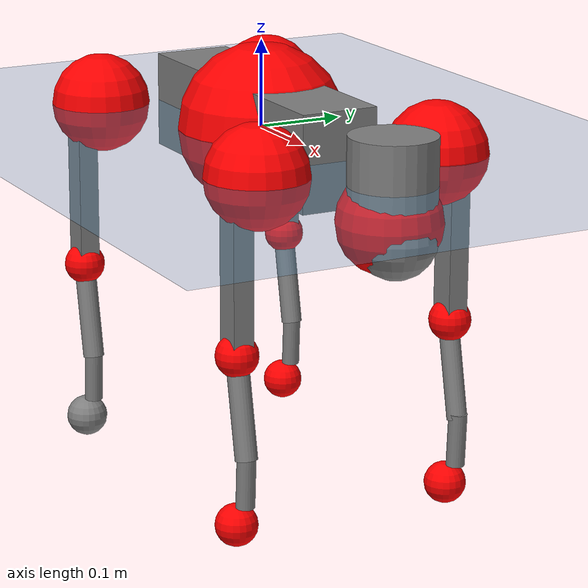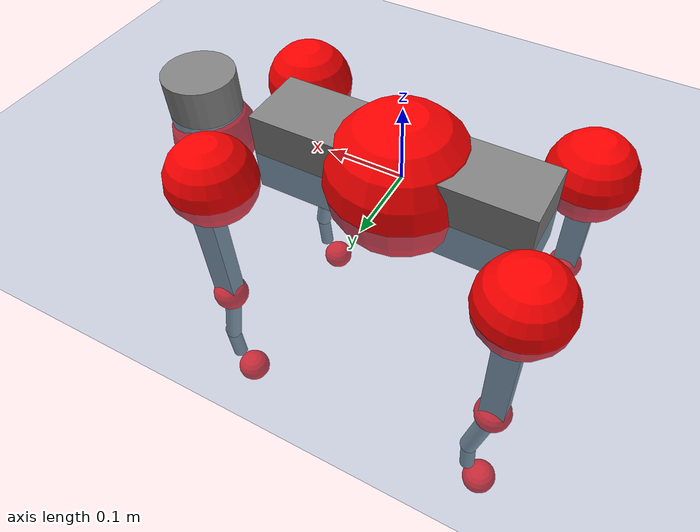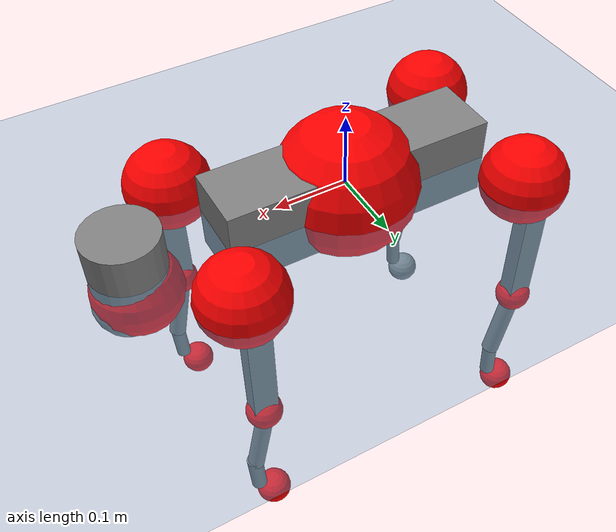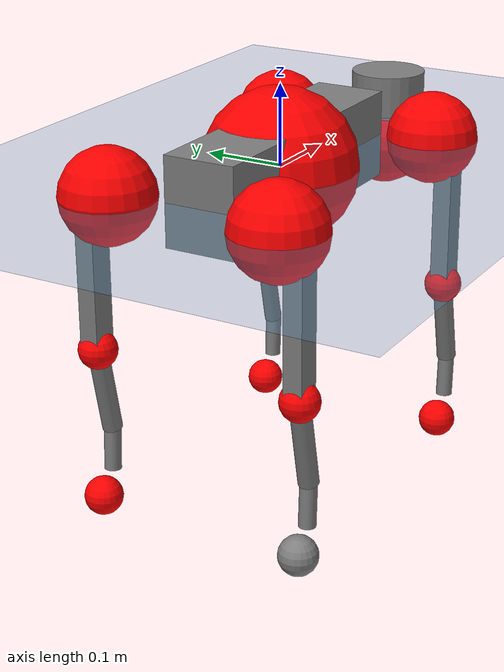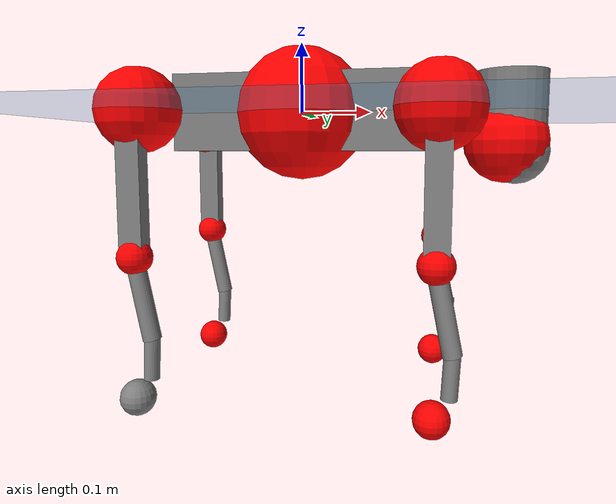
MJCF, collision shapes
<mujoco model="go2">
  <compiler angle="radian" assetdir="assets" balanceinertia="true" inertiafromgeom="false"/>

  <option timestep="0.005" density="1.2" viscosity="2e-05"/>

  <size nkey="1"/>

  <visual>
    <quality shadowsize="8192"/>
    <map shadowclip="0.5"/>
  </visual>

  <default>
    <default class="/">
      <geom contype="0" conaffinity="0" group="1" solref="-1000 -80"/>
      <site size="0.01 0.005 0.005" group="5"/>
      <general forcelimited="true" biastype="affine" gainprm="20" biasprm="0 -20 -0.5"/>
      <default class="go2">
        <joint armature="0.01" damping="0.01" frictionloss="0.2"/>
        <geom condim="1" margin="0.001"/>
        <default class="visual">
          <geom type="mesh" group="2"/>
        </default>
        <default class="collision">
          <geom group="3"/>
          <default class="foot">
            <geom size="0.022 0 0" condim="6" priority="1" friction="0.8 0.02 0.01" solimp="0.015 1 0.022"/>
          </default>
        </default>
        <default class="reward_collision_sphere">
          <geom group="5" rgba="1 0 0 1"/>
        </default>
      </default>
    </default>
  </default>

  <asset>
    <texture type="skybox" colorspace="auto" name="//unnamed_texture_0" builtin="gradient" rgb1="0.95 0.95 0.95" rgb2="0.95 0.95 0.95" width="100" height="600"/>
    <texture type="2d" colorspace="auto" name="texplane" builtin="checker" rgb1="0.345 0.575 0.748" rgb2="0.345 0.575 0.748" markrgb="1 1 1" width="512" height="512"/>
    <material name="MatPlane" class="/" texture="texplane" texuniform="true" texrepeat="2 2" specular="0.9"/>
    <material name="metal" class="/" rgba="0.9 0.95 0.95 1"/>
    <material name="black" class="/" rgba="0 0 0 1"/>
    <material name="white" class="/"/>
    <material name="gray" class="/" rgba="0.671705 0.692426 0.77427 1"/>
    <mesh name="base_0" class="/" file="base_0.obj"/>
    <mesh name="base_1" class="/" file="base_1.obj"/>
    <mesh name="base_2" class="/" file="base_2.obj"/>
    <mesh name="base_3" class="/" file="base_3.obj"/>
    <mesh name="base_4" class="/" file="base_4.obj"/>
    <mesh name="hip_0" class="/" file="hip_0.obj"/>
    <mesh name="hip_1" class="/" file="hip_1.obj"/>
    <mesh name="thigh_0" class="/" file="thigh_0.obj"/>
    <mesh name="thigh_1" class="/" file="thigh_1.obj"/>
    <mesh name="thigh_mirror_0" class="/" file="thigh_mirror_0.obj"/>
    <mesh name="thigh_mirror_1" class="/" file="thigh_mirror_1.obj"/>
    <mesh name="calf_0" class="/" file="calf_0.obj"/>
    <mesh name="calf_1" class="/" file="calf_1.obj"/>
    <mesh name="calf_mirror_0" class="/" file="calf_mirror_0.obj"/>
    <mesh name="calf_mirror_1" class="/" file="calf_mirror_1.obj"/>
    <mesh name="foot" class="/" file="foot.obj"/>
  </asset>

  <worldbody>
    <geom name="floor" class="/" size="100 100 0.125" type="plane" group="0" material="MatPlane"/>
    <light name="toplight_shadow" class="/" pos="0 0 5" dir="0.0990148 0.0990148 -0.990148" type="directional" ambient="0.04 0.04 0.04" diffuse="0.55 0.55 0.55" specular="0.12 0.12 0.12"/>
    <light name="toplight_fill" class="/" pos="0 0 5" dir="0.0990148 0.0990148 -0.990148" type="directional" castshadow="false" ambient="0.04 0.04 0.04" diffuse="0.3 0.3 0.3" specular="0.08 0.08 0.08"/>
    <body name="trunk" childclass="go2" pos="-0.000132344 0.000803333 4.00808e-05" quat="1 -0.000236602 0.000227511 -0.000220671">
      <inertial pos="0.0225258 -0.000985024 -0.00555243" quat="-0.0015688 0.712164 -0.00590682 0.701987" mass="6.0815" diaginertia="0.119445 0.0745326 0.0154421"/>
      <joint name="//unnamed_joint_0" type="free" armature="0" damping="0" frictionloss="0"/>
      <geom name="//unnamed_geom_1" class="visual" material="black" mesh="base_0"/>
      <geom name="//unnamed_geom_2" class="visual" material="black" mesh="base_1"/>
      <geom name="//unnamed_geom_3" class="visual" material="black" mesh="base_2"/>
      <geom name="//unnamed_geom_4" class="visual" material="white" mesh="base_3"/>
      <geom name="//unnamed_geom_5" class="visual" material="gray" mesh="base_4"/>
      <geom name="trunk_1" class="collision" size="0.181211 0.0450379 0.0549125" type="box"/>
      <geom name="trunk_2" class="collision" size="0.0481688 0.0433519" pos="0.292668 0 0.00914634" type="cylinder"/>
      <geom name="trunk_3" class="collision" size="0.0452787" pos="0.300883 0 -0.0548781"/>
      <geom name="//unnamed_geom_9" class="reward_collision_sphere" size="0.0963376"/>
      <geom name="//unnamed_geom_10" class="reward_collision_sphere" size="0.0578026" pos="0.287533 0 -0.0411585"/>
      <site name="imu" pos="-0.0265235 -0.00151432 0.0371782" size="0.00963376"/>
      <camera name="track" pos="0 -1.89718 0" quat="0.707107 0.707107 0 0" mode="trackcom"/>
      <camera name="ego_camera" pos="0.320394 0 0.0411585" quat="-0.5 -0.5 0.5 0.5"/>
      <body name="FL_hip" pos="0.198023 0.0443464 0.000525805" quat="1 -1.59588e-05 -3.29646e-05 9.20511e-06">
        <inertial pos="-0.00547996 0.00235796 -0.000251165" quat="0.498744 0.495706 0.502399 0.503116" mass="0.609147" diaginertia="0.00101897 0.000465059 0.000310291"/>
        <joint name="FL_hip_joint" pos="0 0 0" axis="1 -0.000875187 -0.000478568" stiffness="0.00875571" range="-1.02969 1.03882" armature="0.00975152" damping="0.00665267" frictionloss="0.190816"/>
        <geom name="//unnamed_geom_11" class="visual" material="metal" mesh="hip_0"/>
        <geom name="//unnamed_geom_12" class="visual" material="gray" mesh="hip_1"/>
        <geom name="//unnamed_geom_13" class="collision" size="0.0443153 0.0192675" pos="0 0.0758873 0" quat="0.707107 0.707107 0 0" type="cylinder"/>
        <geom name="//unnamed_geom_14" class="reward_collision_sphere" size="0.0578026" pos="0 0.0664013 0"/>
        <body name="FL_thigh" pos="-0.00108947 0.0895404 0.000442035" quat="1 -0.000286769 0.000357716 0.000266538">
          <inertial pos="-0.00375175 -0.019785 -0.0299243" quat="0.829452 0.0834041 -0.022438 0.551861" mass="1.02094" diaginertia="0.00679343 0.00454883 0.000564307"/>
          <joint name="FL_thigh_joint" pos="0 0 0" axis="0.000857492 0.999994 0.00342734" stiffness="0.00408966" range="-1.55248 3.48299" armature="0.0101307" damping="0.00736952" frictionloss="0.201633"/>
          <geom name="//unnamed_geom_15" class="visual" material="metal" mesh="thigh_0"/>
          <geom name="//unnamed_geom_16" class="visual" material="gray" mesh="thigh_1"/>
          <geom name="//unnamed_geom_17" class="collision" size="0.1026 0.0118014 0.0163774" pos="0 0 -0.0974086" quat="0.707107 0 0.707107 0" type="box"/>
          <body name="FL_calf" pos="-0.000695877 0.00032628 -0.195215" quat="1 -8.13814e-05 1.64032e-05 8.50588e-05">
            <inertial pos="0.00634769 0.000369068 -0.128582" quat="0.709764 0.0022081 -0.0036853 0.704426" mass="0.21752" diaginertia="0.00172283 0.00114422 3.43673e-05"/>
            <joint name="FL_calf_joint" pos="0 0 0" axis="0.000379567 1 0.00075413" range="-2.70203 -0.841666" armature="0.0101116" damping="0.00369023" frictionloss="0.191291"/>
            <geom name="//unnamed_geom_18" class="visual" material="gray" mesh="calf_0"/>
            <geom name="//unnamed_geom_19" class="visual" material="black" mesh="calf_1"/>
            <geom name="FL_calf0" class="collision" size="0.0115605 0.0578026" pos="0.00821524 0 -0.0548781" quat="0.994493 0 -0.104807 0" type="cylinder"/>
            <geom name="//unnamed_geom_21" class="collision" size="0.0105971 0.0313097" pos="0.0205381 0 -0.135366" quat="0.999688 0 0.0249974 0" type="cylinder"/>
            <geom name="//unnamed_geom_22" class="visual" pos="0 0 -0.194817" quat="1 0 0 0" material="black" mesh="foot"/>
            <geom name="FL_foot" class="foot" size="0.0162284" pos="-0.00205381 0 -0.194817"/>
            <geom name="//unnamed_geom_24" class="reward_collision_sphere" size="0.0240844"/>
            <geom name="//unnamed_geom_25" class="reward_collision_sphere" size="0.0240844" pos="-0.00205381 0 -0.194817"/>
            <site name="FL_foot" class="foot" pos="-0.00205381 0 -0.194817" size="0.00963376"/>
          </body>
        </body>
      </body>
      <body name="FR_hip" pos="0.198135 -0.0423691 -0.000322285" quat="1 -7.47247e-05 7.07532e-05 7.18422e-05">
        <inertial pos="-0.00560609 -0.00212412 -0.000472139" quat="0.49965 0.505707 0.498481 0.496111" mass="0.610008" diaginertia="0.00101881 0.000458073 0.000306341"/>
        <joint name="FR_hip_joint" pos="0 0 0" axis="0.999967 -0.00280629 0.00765445" range="-1.04371 1.0491" armature="0.0100758" damping="0.017405" frictionloss="0.193886"/>
        <geom name="//unnamed_geom_26" class="visual" pos="0 2.95814e-10 1.26881e-08" quat="4.63268e-05 1 0 0" material="metal" mesh="hip_0"/>
        <geom name="//unnamed_geom_27" class="visual" pos="0 4.7955e-10 -3.13824e-08" quat="4.63268e-05 1 0 0" material="gray" mesh="hip_1"/>
        <geom name="//unnamed_geom_28" class="collision" size="0.0443153 0.0192675" pos="0 -0.0758873 0" quat="0.707107 0.707107 0 0" type="cylinder"/>
        <geom name="//unnamed_geom_29" class="reward_collision_sphere" size="0.0578026" pos="0 -0.0664013 0"/>
        <body name="FR_thigh" pos="-0.000353485 -0.0901923 -0.000317594" quat="1 -3.49474e-05 1.75142e-05 4.53275e-05">
          <inertial pos="-0.00494184 0.0221092 -0.0291659" quat="0.55261 -0.0198306 0.0857275 0.828782" mass="1.03186" diaginertia="0.00686764 0.00448945 0.000562938"/>
          <joint name="FR_thigh_joint" pos="0 0 0" axis="-0.000469151 -1 -0.00016947" stiffness="0.00565397" range="-3.48672 1.56757" armature="0.009506" damping="0.0111367" frictionloss="0.201453"/>
          <geom name="//unnamed_geom_30" class="visual" material="metal" mesh="thigh_mirror_0"/>
          <geom name="//unnamed_geom_31" class="visual" material="gray" mesh="thigh_mirror_1"/>
          <geom name="//unnamed_geom_32" class="collision" size="0.1026 0.0118014 0.0163774" pos="0 0 -0.0974086" quat="0.707107 0 0.707107 0" type="box"/>
          <body name="FR_calf" pos="-0.000246704 0.000171832 -0.194168" quat="1 7.77133e-05 -0.000180692 0.000157943">
            <inertial pos="0.00732555 -8.48934e-05 -0.129516" quat="0.702309 -0.00282785 -0.000566963 0.711866" mass="0.21883" diaginertia="0.00173513 0.00112936 3.4865e-05"/>
            <joint name="FR_calf_joint" pos="0 0 0" axis="8.22044e-05 -1 -0.00013338" range="0.837137 2.72537" armature="0.00940409" damping="0.0075423" frictionloss="0.196619"/>
            <geom name="//unnamed_geom_33" class="visual" material="gray" mesh="calf_mirror_0"/>
            <geom name="//unnamed_geom_34" class="visual" material="black" mesh="calf_mirror_1"/>
            <geom name="FR_calf0" class="collision" size="0.0125239 0.0578026" pos="0.010269 0 -0.0548781" quat="0.995004 0 -0.0998334 0" type="cylinder"/>
            <geom name="//unnamed_geom_36" class="collision" size="0.0105971 0.0313097" pos="0.0205381 0 -0.135366" quat="0.999688 0 0.0249974 0" type="cylinder"/>
            <geom name="//unnamed_geom_37" class="visual" pos="0 0 -0.194817" quat="1 0 0 0" material="black" mesh="foot"/>
            <geom name="FR_foot" class="foot" size="0.0210112" pos="-0.00205381 0 -0.194817"/>
            <geom name="//unnamed_geom_39" class="reward_collision_sphere" size="0.0240844"/>
            <geom name="//unnamed_geom_40" class="reward_collision_sphere" size="0.0240844" pos="-0.00205381 0 -0.194817"/>
            <site name="FR_foot" class="foot" pos="-0.00205381 0 -0.194817" size="0.00963376"/>
          </body>
        </body>
      </body>
      <body name="RL_hip" pos="-0.198576 0.0432005 0.00160593" quat="1 -0.000412772 -0.00020181 9.07767e-06">
        <inertial pos="0.00599416 0.00158552 -0.000937657" quat="0.504367 0.499321 0.497926 0.498359" mass="0.60091" diaginertia="0.00100947 0.000465632 0.000305546"/>
        <joint name="RL_hip_joint" pos="0 0 0" axis="-0.999846 0.0151642 -0.00878329" stiffness="0.00341935" range="-1.04652 1.05778" armature="0.00941872" damping="0.0149113" frictionloss="0.188382"/>
        <geom name="//unnamed_geom_41" class="visual" pos="-9.78052e-10 0 -1.91721e-07" quat="4.63268e-05 0 1 0" material="metal" mesh="hip_0"/>
        <geom name="//unnamed_geom_42" class="visual" pos="-1.58554e-09 0 -1.70029e-07" quat="4.63268e-05 0 1 0" material="gray" mesh="hip_1"/>
        <geom name="//unnamed_geom_43" class="collision" size="0.0443153 0.0192675" pos="0 0.0758873 0" quat="0.707107 0.707107 0 0" type="cylinder"/>
        <geom name="//unnamed_geom_44" class="reward_collision_sphere" size="0.0578026" pos="0 0.0664013 0"/>
        <body name="RL_thigh" pos="-0.000256795 0.0913879 0.000245716" quat="1 0.000178688 0.000112536 -0.000153783">
          <inertial pos="-0.00367937 -0.0194717 -0.0305024" quat="0.83047 0.0829788 -0.0202766 0.550474" mass="1.0171" diaginertia="0.00686591 0.0044297 0.00056358"/>
          <joint name="RL_thigh_joint" pos="0 0 0" axis="0.00120775 0.999993 -0.00340683" stiffness="0.000760699" range="-0.528783 4.54271" armature="0.00924059" damping="0.00548566" frictionloss="0.201718"/>
          <geom name="//unnamed_geom_45" class="visual" material="metal" mesh="thigh_0"/>
          <geom name="//unnamed_geom_46" class="visual" material="gray" mesh="thigh_1"/>
          <geom name="//unnamed_geom_47" class="collision" size="0.1026 0.0118014 0.0163774" pos="0 0 -0.0974086" quat="0.707107 0 0.707107 0" type="box"/>
          <body name="RL_calf" pos="0.000425505 -0.000675419 -0.1951" quat="1 0.000316577 -8.79961e-05 8.12009e-05">
            <inertial pos="0.00620267 -0.000508686 -0.129199" quat="0.710574 0.00231428 -0.00554025 0.703597" mass="0.217124" diaginertia="0.00172598 0.00113922 3.43888e-05"/>
            <joint name="RL_calf_joint" pos="0 0 0" axis="-0.00339601 0.999984 -0.00451977" stiffness="0.00236027" range="-2.70259 -0.832119" armature="0.0101771" damping="0" frictionloss="0.201193"/>
            <geom name="//unnamed_geom_48" class="visual" material="gray" mesh="calf_0"/>
            <geom name="//unnamed_geom_49" class="visual" material="black" mesh="calf_1"/>
            <geom name="RL_calf0" class="collision" size="0.0125239 0.0578026" pos="0.010269 0 -0.0548781" quat="0.995004 0 -0.0998334 0" type="cylinder"/>
            <geom name="//unnamed_geom_51" class="collision" size="0.0105971 0.0313097" pos="0.0205381 0 -0.135366" quat="0.999688 0 0.0249974 0" type="cylinder"/>
            <geom name="//unnamed_geom_52" class="visual" pos="0 0 -0.194817" quat="1 0 0 0" material="black" mesh="foot"/>
            <geom name="RL_foot" class="foot" size="0.0190578" pos="-0.00205381 0 -0.194817"/>
            <geom name="//unnamed_geom_54" class="reward_collision_sphere" size="0.0240844"/>
            <geom name="//unnamed_geom_55" class="reward_collision_sphere" size="0.0240844" pos="-0.00205381 0 -0.194817"/>
            <site name="RL_foot" class="foot" pos="-0.00205381 0 -0.194817" size="0.00963376"/>
          </body>
        </body>
      </body>
      <body name="RR_hip" pos="-0.19912 -0.045317 -0.00101308" quat="1 8.67623e-05 0.00062589 0.000206494">
        <inertial pos="0.00520215 -0.00192474 0.000226376" quat="0.499764 0.497413 0.49817 0.504621" mass="0.611949" diaginertia="0.00102017 0.000462598 0.000315843"/>
        <joint name="RR_hip_joint" pos="0 0 0" axis="-0.999999 2.87583e-05 -0.00114601" range="-1.05608 1.03156" armature="0.00988082" damping="0.00687416" frictionloss="0.183932"/>
        <geom name="//unnamed_geom_56" class="visual" pos="9.7534e-10 2.95814e-10 -2.04409e-07" quat="2.14617e-09 4.63268e-05 4.63268e-05 -1" material="metal" mesh="hip_0"/>
        <geom name="//unnamed_geom_57" class="visual" pos="1.59224e-09 4.7955e-10 -1.38646e-07" quat="2.14617e-09 4.63268e-05 4.63268e-05 -1" material="gray" mesh="hip_1"/>
        <geom name="//unnamed_geom_58" class="collision" size="0.0443153 0.0192675" pos="0 -0.0758873 0" quat="0.707107 0.707107 0 0" type="cylinder"/>
        <geom name="//unnamed_geom_59" class="reward_collision_sphere" size="0.0578026" pos="0 -0.0664013 0"/>
        <body name="RR_thigh" pos="0.00135498 -0.091588 -0.000274799" quat="1 -0.000376557 0.000132239 -0.000203679">
          <inertial pos="-0.00378733 0.021729 -0.0298076" quat="0.553044 -0.0203274 0.0833151 0.828726" mass="1.03552" diaginertia="0.00681735 0.00450528 0.000571271"/>
          <joint name="RR_thigh_joint" pos="0 0 0" axis="-0.00228368 -0.999969 0.00759495" range="-4.54464 0.548593" armature="0.00916164" damping="0.0104953" frictionloss="0.194774"/>
          <geom name="//unnamed_geom_60" class="visual" material="metal" mesh="thigh_mirror_0"/>
          <geom name="//unnamed_geom_61" class="visual" material="gray" mesh="thigh_mirror_1"/>
          <geom name="//unnamed_geom_62" class="collision" size="0.1026 0.0118014 0.0163774" pos="0 0 -0.0974086" quat="0.707107 0 0.707107 0" type="box"/>
          <body name="RR_calf" pos="0.000322267 -0.000636616 -0.195092" quat="1 -0.000189469 -5.5753e-05 0.000178844">
            <inertial pos="0.00721982 0.000819872 -0.129225" quat="0.703824 -0.00452051 0.0014879 0.710358" mass="0.213702" diaginertia="0.00170454 0.00111255 3.40233e-05"/>
            <joint name="RR_calf_joint" pos="0 0 0" axis="-0.000660351 -0.999975 -0.00706318" stiffness="0.00163517" range="0.843328 2.71013" armature="0.00952279" damping="0.00827327" frictionloss="0.183601"/>
            <geom name="//unnamed_geom_63" class="visual" material="gray" mesh="calf_mirror_0"/>
            <geom name="//unnamed_geom_64" class="visual" material="black" mesh="calf_mirror_1"/>
            <geom name="RR_calf0" class="collision" size="0.0125239 0.0578026" pos="0.010269 0 -0.0548781" quat="0.995004 0 -0.0998334 0" type="cylinder"/>
            <geom name="//unnamed_geom_66" class="collision" size="0.0105971 0.0313097" pos="0.0205381 0 -0.135366" quat="0.999688 0 0.0249974 0" type="cylinder"/>
            <geom name="//unnamed_geom_67" class="visual" pos="0 0 -0.194817" quat="1 0 0 0" material="black" mesh="foot"/>
            <geom name="RR_foot" class="foot" size="0.0244694" pos="-0.00205381 0 -0.194817"/>
            <geom name="//unnamed_geom_69" class="reward_collision_sphere" size="0.0240844"/>
            <geom name="//unnamed_geom_70" class="reward_collision_sphere" size="0.0240844" pos="-0.00205381 0 -0.194817"/>
            <site name="RR_foot" class="foot" pos="-0.00205381 0 -0.194817" size="0.00963376"/>
          </body>
        </body>
      </body>
    </body>
  </worldbody>

  <contact>
    <pair class="/" geom1="floor" geom2="FL_foot" name="//unnamed_contact_0"/>
    <pair class="/" geom1="floor" geom2="FR_foot" name="//unnamed_contact_1"/>
    <pair class="/" geom1="floor" geom2="RL_foot" name="//unnamed_contact_2"/>
    <pair class="/" geom1="floor" geom2="RR_foot" name="//unnamed_contact_3"/>
  </contact>

  <actuator>
    <general name="FL_hip" class="/" joint="FL_hip_joint" forcerange="-22.0527 22.0527" gainprm="19.3179" biasprm="0 -19.3179 -0.477947"/>
    <general name="FL_thigh" class="/" joint="FL_thigh_joint" forcerange="-22.7561 22.7561" gainprm="19.3179" biasprm="0 -19.3179 -0.477947"/>
    <general name="FL_calf" class="/" joint="FL_calf_joint" forcerange="-43.0776 43.0776" gainprm="19.3179" biasprm="0 -19.3179 -0.477947"/>
    <general name="FR_hip" class="/" joint="FR_hip_joint" forcerange="-23.5241 23.5241" gainprm="19.3179" biasprm="0 -19.3179 -0.477947"/>
    <general name="FR_thigh" class="/" joint="FR_thigh_joint" forcerange="-23.0085 23.0085" gainprm="19.3179" biasprm="0 -19.3179 -0.477947"/>
    <general name="FR_calf" class="/" joint="FR_calf_joint" forcerange="-44.4691 44.4691" gainprm="19.3179" biasprm="0 -19.3179 -0.477947"/>
    <general name="RL_hip" class="/" joint="RL_hip_joint" forcerange="-23.0226 23.0226" gainprm="19.3179" biasprm="0 -19.3179 -0.477947"/>
    <general name="RL_thigh" class="/" joint="RL_thigh_joint" forcerange="-22.9281 22.9281" gainprm="19.3179" biasprm="0 -19.3179 -0.477947"/>
    <general name="RL_calf" class="/" joint="RL_calf_joint" forcerange="-43.5115 43.5115" gainprm="19.3179" biasprm="0 -19.3179 -0.477947"/>
    <general name="RR_hip" class="/" joint="RR_hip_joint" forcerange="-23.5897 23.5897" gainprm="19.3179" biasprm="0 -19.3179 -0.477947"/>
    <general name="RR_thigh" class="/" joint="RR_thigh_joint" forcerange="-22.4935 22.4935" gainprm="19.3179" biasprm="0 -19.3179 -0.477947"/>
    <general name="RR_calf" class="/" joint="RR_calf_joint" forcerange="-44.6286 44.6286" gainprm="19.3179" biasprm="0 -19.3179 -0.477947"/>
  </actuator>

  <sensor>
    <gyro site="imu" name="imu_angular_velocity"/>
    <velocimeter site="imu" name="imu_linear_velocity"/>
    <framelinvel objtype="site" objname="FL_foot" name="FL_foot_global_linear_velocity"/>
    <framelinvel objtype="site" objname="FR_foot" name="FR_foot_global_linear_velocity"/>
    <framelinvel objtype="site" objname="RL_foot" name="RL_foot_global_linear_velocity"/>
    <framelinvel objtype="site" objname="RR_foot" name="RR_foot_global_linear_velocity"/>
  </sensor>

  <keyframe>
    <key name="home" qpos="0 0 0.325 1 0 0 0 0.1 0.8 -1.5 -0.1 -0.8 1.5 -0.1 0.8 -1.5 0.1 -0.8 1.5"/>
  </keyframe>
</mujoco>
